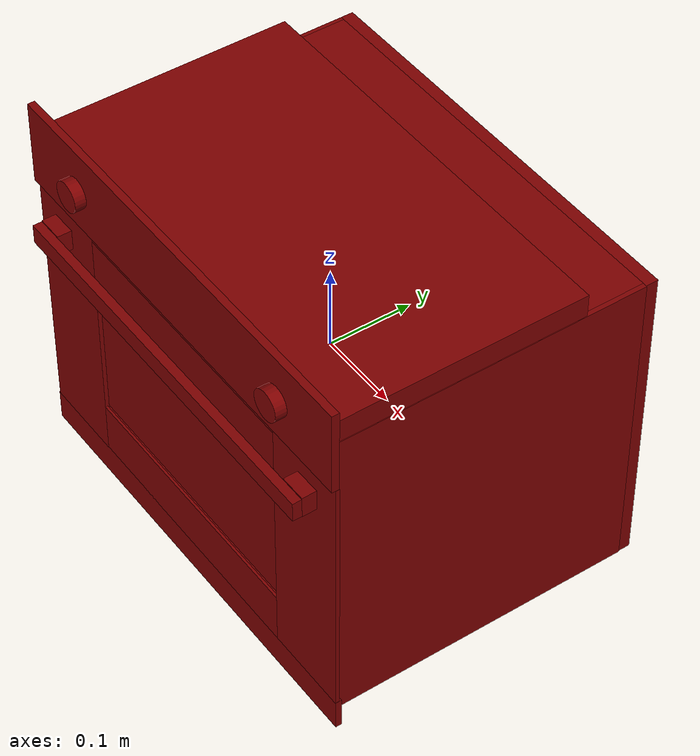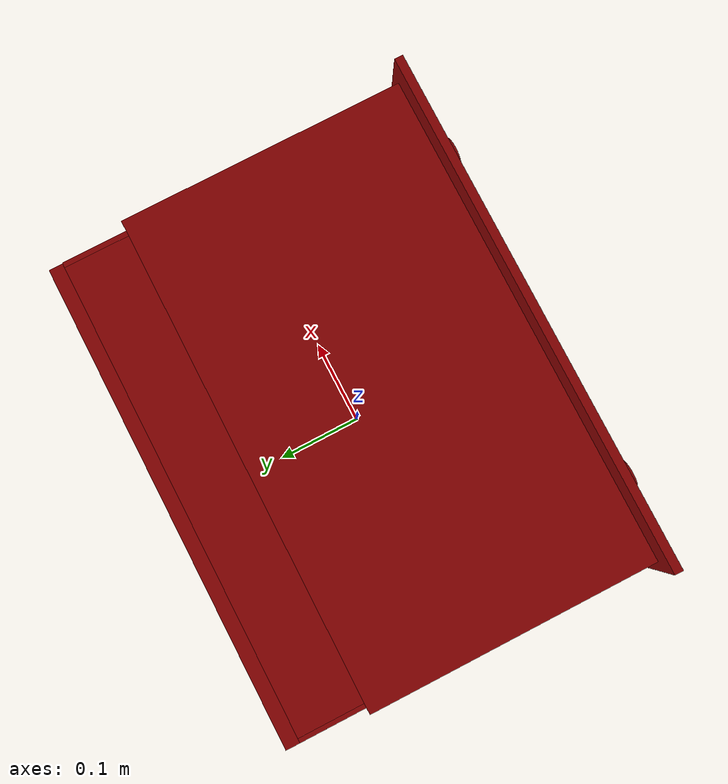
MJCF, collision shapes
<mujoco model="model">
  <compiler angle="radian"/>
  <asset>
    <mesh file="visuals/Body001.obj" name="Body001_vis"/>
    <mesh file="visuals/Button001.obj" name="Button001_vis"/>
    <mesh file="visuals/Button002.obj" name="Button002_vis"/>
    <mesh file="visuals/Door.obj" name="Door_vis"/>
    <mesh file="visuals/Door001_Clear.obj" name="Door001_Clear_vis"/>
    <mesh file="visuals/Handle.obj" name="Handle_vis"/>
    <mesh file="visuals/Shelf001.obj" name="Shelf001_vis"/>
    <mesh file="visuals/Shelf002.obj" name="Shelf002_vis"/>
    <texture file="visuals/T_BC001.png" name="Body001_material" type="2d"/>
    <material name="Body001_material" rgba="1 1 1 1.0" texture="Body001_material" shininess="0.4472135901451111" specular="1"/>
    <texture file="visuals/T_BC001.png" name="Button001_material" type="2d"/>
    <material name="Button001_material" rgba="1 1 1 1.0" texture="Button001_material" shininess="0.4472135901451111" specular="1"/>
    <texture file="visuals/T_BC001.png" name="Button002_material" type="2d"/>
    <material name="Button002_material" rgba="1 1 1 1.0" texture="Button002_material" shininess="0.4472135901451111" specular="1"/>
    <texture file="visuals/T_BC001.png" name="Door_material" type="2d"/>
    <material name="Door_material" rgba="1 1 1 1.0" texture="Door_material" shininess="0.4472135901451111" specular="1"/>
    <texture file="visuals/T_BC001.png" name="Door001_Clear_material" type="2d"/>
    <material name="Door001_Clear_material" rgba="1 1 1 0.699999988079071" texture="Door001_Clear_material" shininess="0.4472135901451111" specular="1"/>
    <texture file="visuals/T_BC001.png" name="Handle_material" type="2d"/>
    <material name="Handle_material" rgba="1 1 1 1.0" texture="Handle_material" shininess="0.4472135901451111" specular="1"/>
    <texture file="visuals/T_BC001.png" name="Shelf001_material" type="2d"/>
    <material name="Shelf001_material" rgba="1 1 1 1.0" texture="Shelf001_material" shininess="0.4472135901451111" specular="1"/>
    <texture file="visuals/T_BC001.png" name="Shelf002_material" type="2d"/>
    <material name="Shelf002_material" rgba="1 1 1 1.0" texture="Shelf002_material" shininess="0.4472135901451111" specular="1"/>
  </asset>
  <default>
    <default class="visual">
      <geom conaffinity="0" contype="0" group="1" type="mesh"/>
    </default>
    <default class="collision">
      <geom group="0" rgba="0.5 0 0 0.5"/>
    </default>
    <default class="spawn">
      <geom group="0" rgba="1 1 1 0.5" contype="0" conaffinity="0"/>
      <site group="0" rgba="1 1 1 0.5"/>
    </default>
    <default class="region">
      <geom group="1" conaffinity="0" contype="0" rgba="0 1 0 0"/>
    </default>
  </default>
  <worldbody>
    <body>
      <body name="object">
        <geom mesh="Body001_vis" type="mesh" solimp="0.998 0.998 0.001" solref="0.001 1" density="100" friction="0.95 0.3 0.1" class="visual" material="Body001_material"/>
        <geom class="collision" type="box" pos="-0.00046832329826429486 0.2004929631948471 -0.018560096621513367" size="0.2560580372810364 0.007349784020334482 0.19311903417110443" quat="1.0 0.0 0.0 0.0"/>
        <geom class="collision" type="box" pos="-0.25421541929244995 0.010185358114540577 -0.01856008917093277" size="0.0023037760984152555 0.1829615831375122 0.19311895966529846" quat="1.0 0.0 0.0 0.0"/>
        <geom class="collision" type="box" pos="0.25374701619148254 0.010185358114540577 -0.01856008917093277" size="0.0027721649967134 0.18296150863170624 0.1931189000606537" quat="1.0 0.0 0.0 0.0"/>
        <geom class="collision" type="box" pos="-0.00046832329826429486 -0.027944527566432953 0.1880442351102829" size="0.25605762004852295 0.14838197827339172 0.01348932459950447" quat="1.0 0.0 0.0 0.0"/>
        <geom class="collision" type="box" pos="-0.00046832329826429486 0.008410073816776276 0.14813794195652008" size="0.2560575008392334 0.18473652005195618 0.02641822211444378" quat="1.0 0.0 0.0 0.0"/>
        <geom class="collision" type="box" pos="-0.00046832329826429486 0.010185293853282928 -0.21014142036437988" size="0.25605735182762146 0.18296122550964355 0.001534141250886023" quat="1.0 0.0 0.0 0.0"/>
        <geom class="collision" type="box" pos="-2.4941982701420784e-08 -0.18044424057006836 0.1758926808834076" size="0.26707249879837036 0.0044055115431547165 0.050319697707891464" quat="1.0 0.0 0.0 0.0"/>
        <geom class="collision" type="box" pos="-0.24489836394786835 0.015067614614963531 -0.06028791517019272" size="0.002303769811987877 0.13677044212818146 0.1365850567817688" quat="1.0 0.0 0.0 0.0"/>
        <geom class="collision" type="box" pos="-0.23025481402873993 0.015067614614963531 0.0408187173306942" size="0.01234002411365509 0.13677038252353668 0.0022602274548262358" quat="1.0 0.0 0.0 0.0"/>
        <geom class="collision" type="box" pos="-0.2301155924797058 0.015067614614963531 0.07009238004684448" size="0.012479249387979507 0.1367703229188919 0.002260226523503661" quat="1.0 0.0 0.0 0.0"/>
        <geom class="collision" type="box" pos="-0.21985094249248505 0.015212140046060085 0.06454873830080032" size="0.0022144108079373837 0.12528668344020844 0.0032834643498063087" quat="1.0 0.0 0.0 0.0"/>
        <geom class="collision" type="box" pos="-0.21985094249248505 0.015212140046060085 0.005588546395301819" size="0.0022144108079373837 0.12528660893440247 0.0032834643498063087" quat="1.0 0.0 0.0 0.0"/>
        <geom class="collision" type="box" pos="-0.23486435413360596 0.015067614614963531 0.011132188141345978" size="0.007730482611805201 0.1367701143026352 0.00226022326387465" quat="1.0 0.0 0.0 0.0"/>
        <geom class="collision" type="box" pos="-0.2301155924797058 0.015067614614963531 -0.06590593606233597" size="0.012479232624173164 0.13677005469799042 0.0022602223325520754" quat="1.0 0.0 0.0 0.0"/>
        <geom class="collision" type="box" pos="-0.21985094249248505 0.015212140046060085 -0.07144957780838013" size="0.0022144108079373837 0.12528638541698456 0.0032834643498063087" quat="1.0 0.0 0.0 0.0"/>
        <geom class="collision" type="box" pos="-0.21985094249248505 0.015212140046060085 -0.14965997636318207" size="0.0022144108079373837 0.1252863109111786 0.0032834643498063087" quat="1.0 0.0 0.0 0.0"/>
        <geom class="collision" type="box" pos="-0.2301155924797058 0.015067614614963531 -0.1441163420677185" size="0.012479220516979694 0.1367698460817337 0.0022602190729230642" quat="1.0 0.0 0.0 0.0"/>
        <geom class="collision" type="box" pos="-0.23025481402873993 0.015067614614963531 -0.02444068342447281" size="0.012339986860752106 0.13676978647708893 0.0022602181416004896" quat="1.0 0.0 0.0 0.0"/>
        <geom class="collision" type="box" pos="-0.23025481402873993 0.015067614614963531 -0.10158595442771912" size="0.012339983135461807 0.13676971197128296 0.0022602169774472713" quat="1.0 0.0 0.0 0.0"/>
        <geom class="collision" type="box" pos="0.22936663031578064 0.015067614614963531 -0.10158595442771912" size="0.012339978478848934 0.13676965236663818 0.0022602160461246967" quat="1.0 0.0 0.0 0.0"/>
        <geom class="collision" type="box" pos="0.22936663031578064 0.015067614614963531 -0.02444068342447281" size="0.012339974753558636 0.13676957786083221 0.0022602148819714785" quat="1.0 0.0 0.0 0.0"/>
        <geom class="collision" type="box" pos="0.2294616550207138 0.015067614614963531 -0.1441163420677185" size="0.012479199096560478 0.13676951825618744 0.002260213950648904" quat="1.0 0.0 0.0 0.0"/>
        <geom class="collision" type="box" pos="0.21919701993465424 0.015212140046060085 -0.14965997636318207" size="0.0022144108079373837 0.1252857893705368 0.0032834643498063087" quat="1.0 0.0 0.0 0.0"/>
        <geom class="collision" type="box" pos="0.21919701993465424 0.015212140046060085 -0.07144957780838013" size="0.0022144108079373837 0.12528569996356964 0.0032834643498063087" quat="1.0 0.0 0.0 0.0"/>
        <geom class="collision" type="box" pos="0.2294616550207138 0.015067614614963531 -0.06590593606233597" size="0.012479186989367008 0.13676932454109192 0.0022602109238505363" quat="1.0 0.0 0.0 0.0"/>
        <geom class="collision" type="box" pos="0.23315858840942383 0.015067614614963531 0.011132188141345978" size="0.008782241493463516 0.13676925003528595 0.002260209759697318" quat="1.0 0.0 0.0 0.0"/>
        <geom class="collision" type="box" pos="0.21919701993465424 0.015212140046060085 0.005588546395301819" size="0.0022144108079373837 0.12528547644615173 0.0032834643498063087" quat="1.0 0.0 0.0 0.0"/>
        <geom class="collision" type="box" pos="0.21919701993465424 0.015212140046060085 0.06454873830080032" size="0.0022144108079373837 0.12528540194034576 0.0032834643498063087" quat="1.0 0.0 0.0 0.0"/>
        <geom class="collision" type="box" pos="0.2294616550207138 0.015067614614963531 0.07009238004684448" size="0.012479170225560665 0.13676905632019043 0.0022602067328989506" quat="1.0 0.0 0.0 0.0"/>
        <geom class="collision" type="box" pos="0.22936663031578064 0.015067614614963531 0.0408187136054039" size="0.012339937500655651 0.13676898181438446 0.0022602055687457323" quat="1.0 0.0 0.0 0.0"/>
        <geom class="collision" type="box" pos="-0.0007408547680824995 -0.11973433941602707 0.09432602673768997" size="0.24614448845386505 0.0017124736914411187 0.008460281416773796" quat="1.0 0.0 0.0 0.0"/>
        <geom class="collision" type="box" pos="-0.0007408547680824995 0.149088516831398 0.09432602673768997" size="0.2461443543434143 0.0017124726437032223 0.008460277691483498" quat="1.0 0.0 0.0 0.0"/>
        <geom class="collision" type="box" pos="0.2441670298576355 0.015067614614963531 -0.06028791517019272" size="0.0023037439677864313 0.13676878809928894 0.1365833878517151" quat="1.0 0.0 0.0 0.0"/>
        <body name="Button001">
          <joint axis="0.0 1.0 0.0" pos="-0.17671701312065125 -0.19102568924427032 0.17367911338806152" limited="true" name="Button001_joint" range="0.0 4.014257279586958" type="hinge" damping="1" frictionloss="1" armature=".01" stiffness="0.05"/>
          <geom mesh="Button001_vis" type="mesh" solimp="0.998 0.998 0.001" solref="0.001 1" density="100" friction="0.95 0.3 0.1" class="visual" material="Button001_material"/>
          <geom class="collision" type="cylinder" pos="-0.17671701312065125 -0.19171017408370972 0.17367911338806152" size="0.017866918817162514 0.006521499250084162" quat="0.7071067094802856 0.7071068286895752 0.0 0.0"/>
        </body>
        <body name="Button002">
          <joint axis="0.0 1.0 0.0" pos="0.17804405093193054 -0.19102568924427032 0.17367911338806152" limited="true" name="Button002_joint" range="0.0 3.141592653589793" type="hinge" damping="1" frictionloss="1" armature=".01" stiffness="0.05"/>
          <geom mesh="Button002_vis" type="mesh" solimp="0.998 0.998 0.001" solref="0.001 1" density="100" friction="0.95 0.3 0.1" class="visual" material="Button002_material"/>
          <geom class="collision" type="cylinder" pos="0.17804405093193054 -0.19171017408370972 0.17367911338806152" size="0.017866918817162514 0.006521499250084162" quat="0.7071067094802856 0.7071068286895752 0.0 0.0"/>
        </body>
        <body name="Door">
          <joint axis="1.0 0.0 0.0" pos="-4.16184775531292e-09 -0.18020310997962952 -0.2179873138666153" limited="true" name="Door_joint" range="0.0 1.15" type="hinge" damping="5" frictionloss="1" armature=".01" stiffness="0.05"/>
          <geom mesh="Door_vis" type="mesh" solimp="0.998 0.998 0.001" solref="0.001 1" density="100" friction="0.95 0.3 0.1" class="visual" material="Door_material"/>
          <geom class="collision" type="box" pos="-0.21486617624759674 -0.17782537639141083 -0.03190147131681442" size="0.05095844343304634 0.0023777757305651903 0.15656012296676636" quat="1.0 0.0 0.0 0.0"/>
          <geom class="collision" type="box" pos="0.2148473709821701 -0.17782537639141083 -0.03190147131681442" size="0.05178799107670784 0.0023777747992426157 0.1565600484609604" quat="1.0 0.0 0.0 0.0"/>
          <geom class="collision" type="box" pos="-0.0004241809365339577 -0.17865099012851715 0.09014329314231873" size="0.16348427534103394 0.0015519035514444113 0.034514810889959335" quat="1.0 0.0 0.0 0.0"/>
          <geom class="collision" type="box" pos="-0.0004241809365339577 -0.17865099012851715 -0.1571739912033081" size="0.16348420083522797 0.001551903085783124 0.0312870629131794" quat="1.0 0.0 0.0 0.0"/>
          <geom class="collision" type="box" pos="0.0017529850592836738 -0.16889366507530212 -0.16786785423755646" size="0.24711360037326813 0.008217363618314266 0.03947329521179199" quat="1.0 0.0 0.0 0.0"/>
          <geom class="collision" type="box" pos="0.0017529850592836738 -0.16889366507530212 0.0888463705778122" size="0.24711346626281738 0.008217358961701393 0.02765430137515068" quat="1.0 0.0 0.0 0.0"/>
          <geom class="collision" type="box" pos="-0.20674777030944824 -0.16889366507530212 -0.03360125422477722" size="0.038612086325883865 0.008217355236411095 0.09479355812072754" quat="1.0 0.0 0.0 0.0"/>
          <geom class="collision" type="box" pos="0.2099120169878006 -0.16889366507530212 -0.03360125422477722" size="0.038953810930252075 0.008217350579798222 0.09479352086782455" quat="1.0 0.0 0.0 0.0"/>
          <geom class="collision" type="box" pos="-1.1645897757261992e-07 -0.17670518159866333 -0.20671123266220093" size="0.2670662999153137 0.003497712779790163 0.019250353798270226" quat="1.0 0.0 0.0 0.0"/>
          <geom class="collision" type="box" pos="-0.0004241809365339577 -0.17782537639141083 0.11926557868719101" size="0.1634841412305832 0.002377772470936179 0.005392838269472122" quat="1.0 0.0 0.0 0.0"/>
          <body name="Door001_Clear">
            <geom mesh="Door001_Clear_vis" type="mesh" solimp="0.998 0.998 0.001" solref="0.001 1" density="100" friction="0.95 0.3 0.1" class="visual" material="Door001_Clear_material"/>
            <geom class="collision" type="box" pos="-0.0007308900821954012 -0.17044475674629211 -0.035129230469465256" size="0.1637905240058899 0.0050050062127411366 0.09075786173343658" quat="1.0 0.0 0.0 0.0"/>
          </body>
          <body name="Handle">
            <geom mesh="Handle_vis" type="mesh" solimp="0.998 0.998 0.001" solref="0.001 1" density="100" friction="0.95 0.3 0.1" class="visual" material="Handle_material"/>
            <geom class="collision" type="box" pos="-0.00027899438282474875 -0.20242741703987122 0.08493664115667343" size="0.23622100055217743 0.005415112245827913 0.011590853333473206" quat="1.0 0.0 0.0 0.0"/>
            <geom class="collision" type="box" pos="-0.2209523767232895 -0.18819284439086914 0.08532793819904327" size="0.015545991249382496 0.008819539099931717 0.012586242519319057" quat="1.0 0.0 0.0 0.0"/>
            <geom class="collision" type="box" pos="0.22039438784122467 -0.18819284439086914 0.08532793819904327" size="0.015545982867479324 0.008819534443318844 0.012586238794028759" quat="1.0 0.0 0.0 0.0"/>
          </body>
        </body>
        <body name="Shelf001">
          <joint axis="0.0 -1.0 0.0" pos="-0.0023457473143935204 0.015003745444118977 0.011857622303068638" limited="true" name="Shelf001_joint" range="0.0 0.24" type="slide" damping="1" frictionloss="1" armature=".01" stiffness="0.05"/>
          <geom mesh="Shelf001_vis" type="mesh" solimp="0.998 0.998 0.001" solref="0.001 1" density="100" friction="0.95 0.3 0.1" class="visual" material="Shelf001_material"/>
          <geom class="collision" type="box" pos="-0.22325894236564636 0.01501123234629631 0.01720348745584488" size="0.012789038941264153 0.1334173083305359 0.002089170040562749" quat="1.0 0.0 0.0 0.0"/>
          <geom class="collision" type="box" pos="0.21819427609443665 0.01501123234629631 0.01720348745584488" size="0.012789035215973854 0.1334172487258911 0.0020891691092401743" quat="1.0 0.0 0.0 0.0"/>
          <geom class="collision" type="box" pos="-0.0025323261506855488 0.14228977262973785 0.01720348745584488" size="0.20793895423412323 0.006137405056506395 0.002089167945086956" quat="1.0 0.0 0.0 0.0"/>
          <geom class="collision" type="box" pos="-0.0025323261506855488 -0.11313672363758087 0.01720348745584488" size="0.20793889462947845 0.0052679721266031265 0.0020891670137643814" quat="1.0 0.0 0.0 0.0"/>
          <geom class="collision" type="box" pos="-0.0025323261506855488 -0.11033391207456589 0.01067390013486147" size="0.20793767273426056 0.008320068940520287 0.002089147688820958" quat="0.9238795042037964 -0.3826834559440613 -0.0 0.0"/>
          <geom class="collision" type="box" pos="-0.0025323261506855488 0.1400252729654312 0.01067390013486147" size="0.20793767273426056 0.008320068940520287 0.002089147688820958" quat="0.9238795042037964 0.3826834559440613 0.0 0.0"/>
          <geom class="collision" type="box" pos="0.20456071197986603 0.01501123234629631 0.010076817125082016" size="0.009755833074450493 0.12411753833293915 0.002089147688820958" quat="0.9762960076332092 0.0 -0.2164396494626999 0.0"/>
          <geom class="collision" type="box" pos="-0.21206752955913544 0.01501123234629631 0.010076817125082016" size="0.009755833074450493 0.12411753833293915 0.002089147688820958" quat="0.9762960076332092 0.0 0.2164396494626999 0.0"/>
          <geom class="collision" type="box" pos="0.0 0.01501123234629631 0.007085203193128109" size="0.20378823578357697 0.12087815999984741 0.0020891299936920404" quat="1.0 0.0 0.0 0.0"/>
        </body>
        <body name="Shelf002">
          <joint axis="0.0 -1.0 0.0" pos="-0.00021627545356750488 0.020002901554107666 -0.10713054239749908" limited="true" name="Shelf002_joint" range="0.0 0.24" type="slide" damping="1" frictionloss="1" armature=".01" stiffness="0.05"/>
          <geom mesh="Shelf002_vis" type="mesh" solimp="0.998 0.998 0.001" solref="0.001 1" density="100" friction="0.95 0.3 0.1" class="visual" material="Shelf002_material"/>
          <geom class="collision" type="box" pos="-0.00021627450769301504 0.0199882872402668 -0.09555390477180481" size="0.2316918671131134 0.1269683539867401 0.003432625439018011" quat="1.0 0.0 0.0 0.0"/>
          <geom class="collision" type="box" pos="-0.1815016269683838 -0.09623289108276367 -0.11068960279226303" size="0.016980240121483803 0.0007887432002462447 0.011702938936650753" quat="1.0 0.0 0.0 0.0"/>
          <geom class="collision" type="box" pos="0.18150165677070618 -0.09623289108276367 -0.11068960279226303" size="0.01698024570941925 0.0007887434330768883 0.011702945455908775" quat="1.0 0.0 0.0 0.0"/>
        </body>
        <geom class="region" name="reg_main" type="box" pos="0.0 0.01149643212556839 0.0" size="0.2670661211013794 0.19634607434272766 0.22621160745620728"/>
        <geom class="region" name="reg_int" type="box" pos="-0.0007756948471069336 0.013458125293254852 -0.04191645607352257" size="0.25138235092163086 0.1782296523451805 0.1642291285097599"/>
      </body>
    </body>
  </worldbody>
  <actuator>
    <motor name="Button001_joint_actuator" joint="Button001_joint" gear="10"/>
    <motor name="Button002_joint_actuator" joint="Button002_joint" gear="10"/>
    <motor name="Door_joint_actuator" joint="Door_joint" gear="50"/>
    <motor name="Shelf001_joint_actuator" joint="Shelf001_joint" gear="50"/>
    <motor name="Shelf002_joint_actuator" joint="Shelf002_joint" gear="50"/>
  </actuator>
</mujoco>
